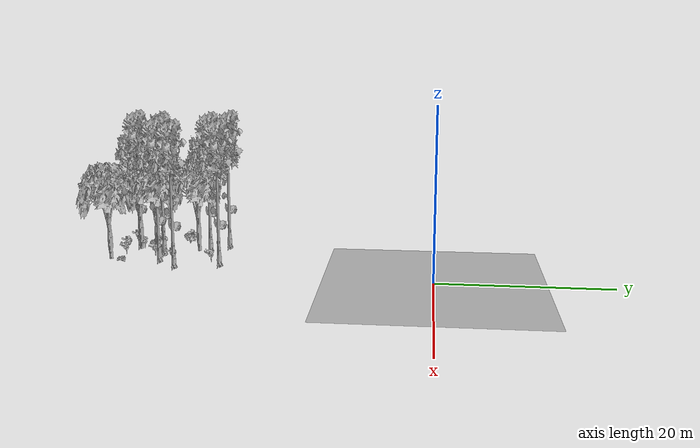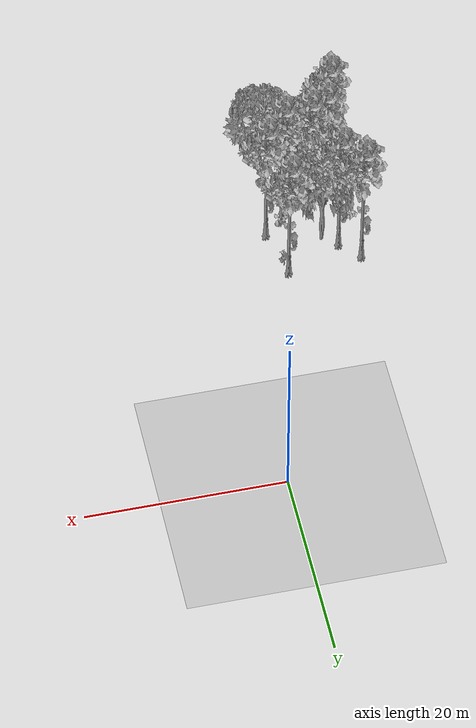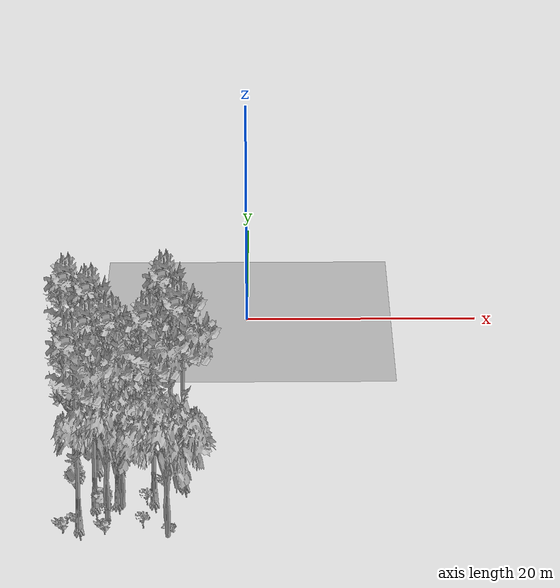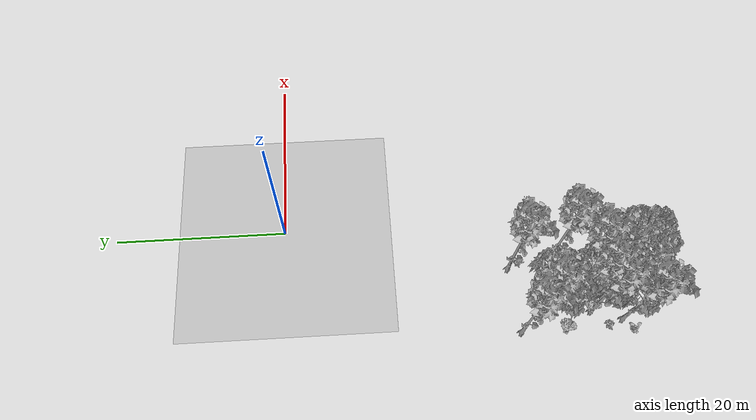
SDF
<sdf version="1.7">
 <world name="default">
  <model name="ground_plane">
   <static>1</static>
   <link name="link">
    <collision name="collision">
     <pose>-50 0 0 0 -0 0</pose>
     <geometry><plane><normal>0 0 1</normal><size>80 80</size></plane></geometry>
     <surface><contact><ode><min_depth>0.01</min_depth><max_vel>0</max_vel></ode></contact></surface>
    </collision>
    <visual name="grass">
     <cast_shadows>0</cast_shadows>
     <geometry>
      <mesh>
       <scale>0.46714285714285714 0.46714285714285714 0.1</scale>
       <uri>file://grass_plane/meshes/grass_plane.dae</uri>
      </mesh>
     </geometry>
    </visual>
   </link>
  </model>
  <model name="Tree 42">
   <static>1</static>
   <pose>-5.893865734677448 -25.888554183486328 0 1.57079 -0 0</pose>
   <link name="link">
    <collision name="collision">
     <geometry><mesh><scale>3.5 5 3.5</scale><uri>model://tree_9/meshes/tree_9.obj</uri></mesh></geometry>
    </collision>
    <visual name="visual">
     <geometry><mesh><scale>3.5 5 3.5</scale><uri>model://tree_9/meshes/tree_9.obj</uri></mesh></geometry>
    </visual>
   </link>
  </model>
  <model name="Tree 106">
   <static>1</static>
   <pose>-11.511883337222898 -34.611876314330274 0 1.57079 -0 0</pose>
   <link name="link">
    <collision name="collision">
     <geometry><mesh><scale>3.5 5 3.5</scale><uri>model://tree_9/meshes/tree_9.obj</uri></mesh></geometry>
    </collision>
    <visual name="visual">
     <geometry><mesh><scale>3.5 5 3.5</scale><uri>model://tree_9/meshes/tree_9.obj</uri></mesh></geometry>
    </visual>
   </link>
  </model>
  <model name="Tree 107">
   <static>1</static>
   <pose>-5.887167356516194 -39.387707628838974 0 1.57079 -0 0</pose>
   <link name="link">
    <collision name="collision">
     <geometry><mesh><scale>3.5 5 3.5</scale><uri>model://tree_2/meshes/tree_2.obj</uri></mesh></geometry>
    </collision>
    <visual name="visual">
     <geometry><mesh><scale>3.5 5 3.5</scale><uri>model://tree_2/meshes/tree_2.obj</uri></mesh></geometry>
    </visual>
   </link>
  </model>
  <model name="Tree 171">
   <static>1</static>
   <pose>-9.494788991743537 -34.68256634521581 0 1.57079 -0 0</pose>
   <link name="link">
    <collision name="collision">
     <geometry><mesh><scale>3.5 5 3.5</scale><uri>model://tree_2/meshes/tree_2.obj</uri></mesh></geometry>
    </collision>
    <visual name="visual">
     <geometry><mesh><scale>3.5 5 3.5</scale><uri>model://tree_2/meshes/tree_2.obj</uri></mesh></geometry>
    </visual>
   </link>
  </model>
  <model name="Tree 279">
   <static>1</static>
   <pose>-11.60261219912308 -28.43274500593127 0 1.57079 -0 0</pose>
   <link name="link">
    <collision name="collision">
     <geometry><mesh><scale>3.5 5 3.5</scale><uri>model://tree_9/meshes/tree_9.obj</uri></mesh></geometry>
    </collision>
    <visual name="visual">
     <geometry><mesh><scale>3.5 5 3.5</scale><uri>model://tree_9/meshes/tree_9.obj</uri></mesh></geometry>
    </visual>
   </link>
  </model>
  <model name="Tree 315">
   <static>1</static>
   <pose>-4.720531529925289 -31.189521306769443 0 1.57079 -0 0</pose>
   <link name="link">
    <collision name="collision">
     <geometry><mesh><scale>3.5 5 3.5</scale><uri>model://tree_9/meshes/tree_9.obj</uri></mesh></geometry>
    </collision>
    <visual name="visual">
     <geometry><mesh><scale>3.5 5 3.5</scale><uri>model://tree_9/meshes/tree_9.obj</uri></mesh></geometry>
    </visual>
   </link>
  </model>
  <model name="Tree 326">
   <static>1</static>
   <pose>-7.0021500983295155 -33.7182592891437 0 1.57079 -0 0</pose>
   <link name="link">
    <collision name="collision">
     <geometry><mesh><scale>3.5 5 3.5</scale><uri>model://tree_9/meshes/tree_9.obj</uri></mesh></geometry>
    </collision>
    <visual name="visual">
     <geometry><mesh><scale>3.5 5 3.5</scale><uri>model://tree_9/meshes/tree_9.obj</uri></mesh></geometry>
    </visual>
   </link>
  </model>
  <model name="Tree 334">
   <static>1</static>
   <pose>-12.583762253540549 -38.0423764280955 0 1.57079 -0 0</pose>
   <link name="link">
    <collision name="collision">
     <geometry><mesh><scale>3.5 5 3.5</scale><uri>model://tree_9/meshes/tree_9.obj</uri></mesh></geometry>
    </collision>
    <visual name="visual">
     <geometry><mesh><scale>3.5 5 3.5</scale><uri>model://tree_9/meshes/tree_9.obj</uri></mesh></geometry>
    </visual>
   </link>
  </model>
  <model name="Tree 374">
   <static>1</static>
   <pose>-13.494191578468335 -26.38840764763886 0 1.57079 -0 0</pose>
   <link name="link">
    <collision name="collision">
     <geometry><mesh><scale>3.5 5 3.5</scale><uri>model://tree_9/meshes/tree_9.obj</uri></mesh></geometry>
    </collision>
    <visual name="visual">
     <geometry><mesh><scale>3.5 5 3.5</scale><uri>model://tree_9/meshes/tree_9.obj</uri></mesh></geometry>
    </visual>
   </link>
  </model>
  <model name="Tree 425">
   <static>1</static>
   <pose>-10.178604219013316 -29.485897300707904 0 1.57079 -0 0</pose>
   <link name="link">
    <collision name="collision">
     <geometry><mesh><scale>3.5 5 3.5</scale><uri>model://tree_2/meshes/tree_2.obj</uri></mesh></geometry>
    </collision>
    <visual name="visual">
     <geometry><mesh><scale>3.5 5 3.5</scale><uri>model://tree_2/meshes/tree_2.obj</uri></mesh></geometry>
    </visual>
   </link>
  </model>
  <model name="Tree 481">
   <static>1</static>
   <pose>-10.519599750128833 -37.09700142723737 0 1.57079 -0 0</pose>
   <link name="link">
    <collision name="collision">
     <geometry><mesh><scale>3.5 5 3.5</scale><uri>model://tree_2/meshes/tree_2.obj</uri></mesh></geometry>
    </collision>
    <visual name="visual">
     <geometry><mesh><scale>3.5 5 3.5</scale><uri>model://tree_2/meshes/tree_2.obj</uri></mesh></geometry>
    </visual>
   </link>
  </model>
  <model name="Tree 590">
   <static>1</static>
   <pose>-9.785668475267773 -33.94537558483701 0 1.57079 -0 0</pose>
   <link name="link">
    <collision name="collision">
     <geometry><mesh><scale>3.5 5 3.5</scale><uri>model://tree_9/meshes/tree_9.obj</uri></mesh></geometry>
    </collision>
    <visual name="visual">
     <geometry><mesh><scale>3.5 5 3.5</scale><uri>model://tree_9/meshes/tree_9.obj</uri></mesh></geometry>
    </visual>
   </link>
  </model>
  <model name="Bush 6">
   <static>1</static>
   <pose>-13.777846446126851 -38.780324790023364 0 1.57079 -0 0</pose>
   <link name="link">
    <collision name="collision">
     <geometry><mesh><scale>2 2 2</scale><uri>model://bush_0/meshes/bush_0.obj</uri></mesh></geometry>
     <surface><contact><collide_without_contact>false</collide_without_contact></contact></surface>
    </collision>
    <visual name="visual">
     <geometry><mesh><scale>2 2 2</scale><uri>model://bush_0/meshes/bush_0.obj</uri></mesh></geometry>
    </visual>
   </link>
  </model>
  <model name="Bush 263">
   <static>1</static>
   <pose>-7.687770407306726 -38.11523186645911 0 1.57079 -0 0</pose>
   <link name="link">
    <collision name="collision">
     <geometry><mesh><scale>2 2 2</scale><uri>model://bush_5/meshes/bush_5.obj</uri></mesh></geometry>
     <surface><contact><collide_without_contact>false</collide_without_contact></contact></surface>
    </collision>
    <visual name="visual">
     <geometry><mesh><scale>2 2 2</scale><uri>model://bush_5/meshes/bush_5.obj</uri></mesh></geometry>
    </visual>
   </link>
  </model>
  <model name="Bush 414">
   <static>1</static>
   <pose>-5.63501338220545 -26.818095693023885 0 1.57079 -0 0</pose>
   <link name="link">
    <collision name="collision">
     <geometry><mesh><scale>2 2 2</scale><uri>model://bush_5/meshes/bush_5.obj</uri></mesh></geometry>
     <surface><contact><collide_without_contact>false</collide_without_contact></contact></surface>
    </collision>
    <visual name="visual">
     <geometry><mesh><scale>2 2 2</scale><uri>model://bush_5/meshes/bush_5.obj</uri></mesh></geometry>
    </visual>
   </link>
  </model>
  <model name="Bush 417">
   <static>1</static>
   <pose>-13.19738606890217 -36.44748146871298 0 1.57079 -0 0</pose>
   <link name="link">
    <collision name="collision">
     <geometry><mesh><scale>2 2 2</scale><uri>model://bush_2/meshes/bush_2.obj</uri></mesh></geometry>
     <surface><contact><collide_without_contact>false</collide_without_contact></contact></surface>
    </collision>
    <visual name="visual">
     <geometry><mesh><scale>2 2 2</scale><uri>model://bush_2/meshes/bush_2.obj</uri></mesh></geometry>
    </visual>
   </link>
  </model>
  <model name="Bush 452">
   <static>1</static>
   <pose>-10.603980761223553 -38.97841783367713 0 1.57079 -0 0</pose>
   <link name="link">
    <collision name="collision">
     <geometry><mesh><scale>2 2 2</scale><uri>model://bush_0/meshes/bush_0.obj</uri></mesh></geometry>
     <surface><contact><collide_without_contact>false</collide_without_contact></contact></surface>
    </collision>
    <visual name="visual">
     <geometry><mesh><scale>2 2 2</scale><uri>model://bush_0/meshes/bush_0.obj</uri></mesh></geometry>
    </visual>
   </link>
  </model>
  <model name="Bush 463">
   <static>1</static>
   <pose>-10.993501809308711 -34.85903076330682 0 1.57079 -0 0</pose>
   <link name="link">
    <collision name="collision">
     <geometry><mesh><scale>2 2 2</scale><uri>model://bush_1/meshes/bush_1.obj</uri></mesh></geometry>
     <surface><contact><collide_without_contact>false</collide_without_contact></contact></surface>
    </collision>
    <visual name="visual">
     <geometry><mesh><scale>2 2 2</scale><uri>model://bush_1/meshes/bush_1.obj</uri></mesh></geometry>
    </visual>
   </link>
  </model>
  <model name="Bush 509">
   <static>1</static>
   <pose>-13.260994855356714 -31.586411756718846 0 1.57079 -0 0</pose>
   <link name="link">
    <collision name="collision">
     <geometry><mesh><scale>2 2 2</scale><uri>model://bush_1/meshes/bush_1.obj</uri></mesh></geometry>
     <surface><contact><collide_without_contact>false</collide_without_contact></contact></surface>
    </collision>
    <visual name="visual">
     <geometry><mesh><scale>2 2 2</scale><uri>model://bush_1/meshes/bush_1.obj</uri></mesh></geometry>
    </visual>
   </link>
  </model>
  <model name="Bush 569">
   <static>1</static>
   <pose>-5.745122510856525 -38.104369973745484 0 1.57079 -0 0</pose>
   <link name="link">
    <collision name="collision">
     <geometry><mesh><scale>2 2 2</scale><uri>model://bush_2/meshes/bush_2.obj</uri></mesh></geometry>
     <surface><contact><collide_without_contact>false</collide_without_contact></contact></surface>
    </collision>
    <visual name="visual">
     <geometry><mesh><scale>2 2 2</scale><uri>model://bush_2/meshes/bush_2.obj</uri></mesh></geometry>
    </visual>
   </link>
  </model>
  <model name="Bush 581">
   <static>1</static>
   <pose>-10.490696103691782 -36.69595731707648 0 1.57079 -0 0</pose>
   <link name="link">
    <collision name="collision">
     <geometry><mesh><scale>2 2 2</scale><uri>model://bush_5/meshes/bush_5.obj</uri></mesh></geometry>
     <surface><contact><collide_without_contact>false</collide_without_contact></contact></surface>
    </collision>
    <visual name="visual">
     <geometry><mesh><scale>2 2 2</scale><uri>model://bush_5/meshes/bush_5.obj</uri></mesh></geometry>
    </visual>
   </link>
  </model>
  <model name="Bush 610">
   <static>1</static>
   <pose>-7.516215923190938 -34.369489887085805 0 1.57079 -0 0</pose>
   <link name="link">
    <collision name="collision">
     <geometry><mesh><scale>2 2 2</scale><uri>model://bush_5/meshes/bush_5.obj</uri></mesh></geometry>
     <surface><contact><collide_without_contact>false</collide_without_contact></contact></surface>
    </collision>
    <visual name="visual">
     <geometry><mesh><scale>2 2 2</scale><uri>model://bush_5/meshes/bush_5.obj</uri></mesh></geometry>
    </visual>
   </link>
  </model>
  <model name="Bush 621">
   <static>1</static>
   <pose>-6.2135027769028355 -31.810978568003854 0 1.57079 -0 0</pose>
   <link name="link">
    <collision name="collision">
     <geometry><mesh><scale>2 2 2</scale><uri>model://bush_0/meshes/bush_0.obj</uri></mesh></geometry>
     <surface><contact><collide_without_contact>false</collide_without_contact></contact></surface>
    </collision>
    <visual name="visual">
     <geometry><mesh><scale>2 2 2</scale><uri>model://bush_0/meshes/bush_0.obj</uri></mesh></geometry>
    </visual>
   </link>
  </model>
 </world>
</sdf>
